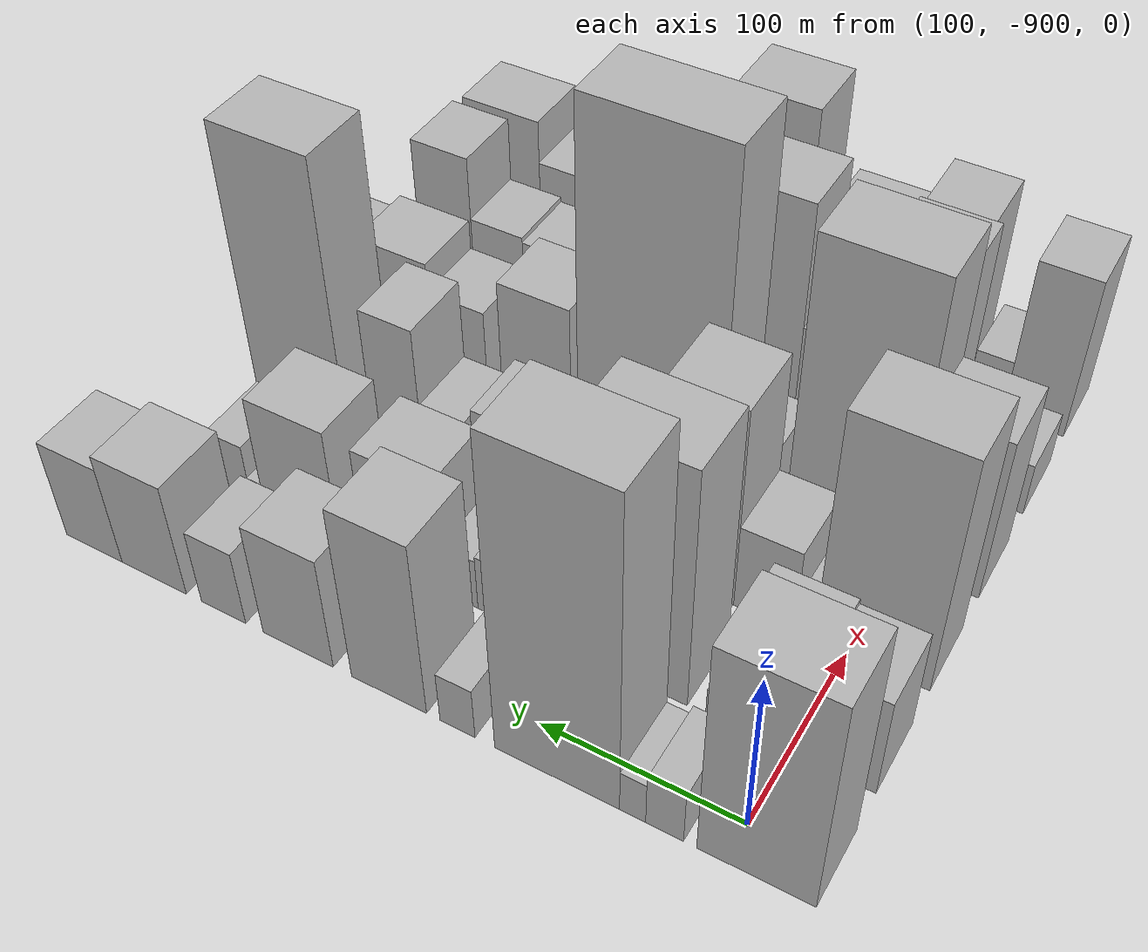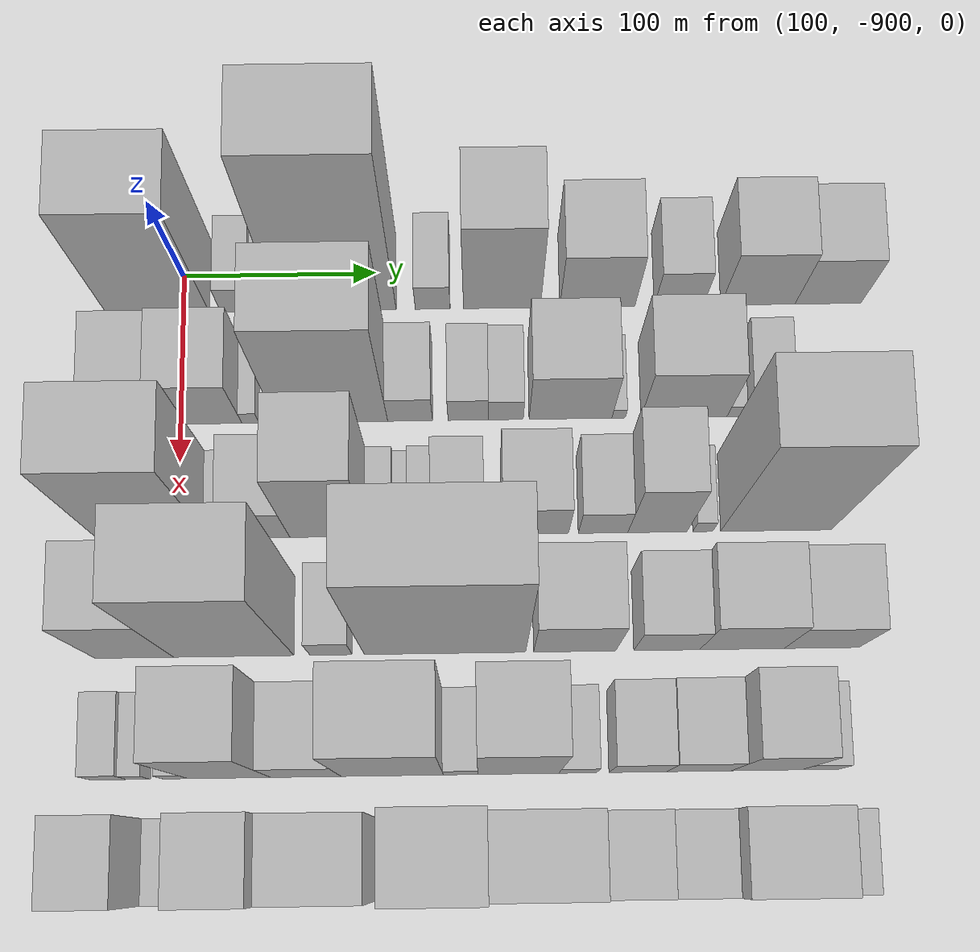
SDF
<sdf version="1.6">
 <world name="default">
  <model name="building_1">
   <static>1</static>
   <pose>100.0000 -913.3014 0 0.000000 0.000000 0.000000</pose>
   <link name="link">
    <pose>0 0 67.50 0 0 0</pose>
    <collision name="collision"><geometry><box><size>40.0000 53.3973 135.0000</size></box></geometry></collision>
    <visual name="visual">
     <cast_shadows>0</cast_shadows>
     <geometry><box><size>40.0000 53.3973 135.0000</size></box></geometry>
     <material>
      <script>
       <uri>model://HANNAS_wall/materials/scripts</uri>
       <uri>model://HANNAS_wall/materials/textures</uri>
       <name>vrc/HANNAS_wall</name>
      </script>
     </material>
    </visual>
   </link>
  </model>
  <model name="building_2">
   <static>1</static>
   <pose>100.0000 -871.7648 0 0.000000 0.000000 0.000000</pose>
   <link name="link">
    <pose>0 0 16.50 0 0 0</pose>
    <collision name="collision"><geometry><box><size>40.0000 17.6759 33.0000</size></box></geometry></collision>
    <visual name="visual">
     <cast_shadows>0</cast_shadows>
     <geometry><box><size>40.0000 17.6759 33.0000</size></box></geometry>
     <material>
      <script>
       <uri>model://HANNAS_wall/materials/scripts</uri>
       <uri>model://HANNAS_wall/materials/textures</uri>
       <name>vrc/HANNAS_wall</name>
      </script>
     </material>
    </visual>
   </link>
  </model>
  <model name="building_3">
   <static>1</static>
   <pose>100.0000 -856.7530 0 0.000000 0.000000 0.000000</pose>
   <link name="link">
    <pose>0 0 13.50 0 0 0</pose>
    <collision name="collision"><geometry><box><size>40.0000 12.3477 27.0000</size></box></geometry></collision>
    <visual name="visual">
     <cast_shadows>0</cast_shadows>
     <geometry><box><size>40.0000 12.3477 27.0000</size></box></geometry>
     <material>
      <script>
       <uri>model://HANNAS_wall/materials/scripts</uri>
       <uri>model://HANNAS_wall/materials/textures</uri>
       <name>vrc/HANNAS_wall</name>
      </script>
     </material>
    </visual>
   </link>
  </model>
  <model name="building_4">
   <static>1</static>
   <pose>100.0000 -819.9749 0 0.000000 0.000000 0.000000</pose>
   <link name="link">
    <pose>0 0 97.50 0 0 0</pose>
    <collision name="collision"><geometry><box><size>40.0000 61.2084 195.0000</size></box></geometry></collision>
    <visual name="visual">
     <cast_shadows>0</cast_shadows>
     <geometry><box><size>40.0000 61.2084 195.0000</size></box></geometry>
     <material>
      <script>
       <uri>model://HANNAS_wall/materials/scripts</uri>
       <uri>model://HANNAS_wall/materials/textures</uri>
       <name>vrc/HANNAS_wall</name>
      </script>
     </material>
    </visual>
   </link>
  </model>
  <model name="building_5">
   <static>1</static>
   <pose>100.0000 -770.3430 0 0.000000 0.000000 0.000000</pose>
   <link name="link">
    <pose>0 0 16.50 0 0 0</pose>
    <collision name="collision"><geometry><box><size>40.0000 18.0554 33.0000</size></box></geometry></collision>
    <visual name="visual">
     <cast_shadows>0</cast_shadows>
     <geometry><box><size>40.0000 18.0554 33.0000</size></box></geometry>
     <material>
      <script>
       <uri>model://HANNAS_wall/materials/scripts</uri>
       <uri>model://HANNAS_wall/materials/textures</uri>
       <name>vrc/HANNAS_wall</name>
      </script>
     </material>
    </visual>
   </link>
  </model>
  <model name="building_6">
   <static>1</static>
   <pose>100.0000 -734.3224 0 0.000000 0.000000 0.000000</pose>
   <link name="link">
    <pose>0 0 55.50 0 0 0</pose>
    <collision name="collision"><geometry><box><size>40.0000 39.9858 111.0000</size></box></geometry></collision>
    <visual name="visual">
     <cast_shadows>0</cast_shadows>
     <geometry><box><size>40.0000 39.9858 111.0000</size></box></geometry>
     <material>
      <script>
       <uri>model://HANNAS_wall/materials/scripts</uri>
       <uri>model://HANNAS_wall/materials/textures</uri>
       <name>vrc/HANNAS_wall</name>
      </script>
     </material>
    </visual>
   </link>
  </model>
  <model name="building_7">
   <static>1</static>
   <pose>100.0000 -684.7469 0 0.000000 0.000000 0.000000</pose>
   <link name="link">
    <pose>0 0 36.00 0 0 0</pose>
    <collision name="collision"><geometry><box><size>40.0000 39.1653 72.0000</size></box></geometry></collision>
    <visual name="visual">
     <cast_shadows>0</cast_shadows>
     <geometry><box><size>40.0000 39.1653 72.0000</size></box></geometry>
     <material>
      <script>
       <uri>model://HANNAS_wall/materials/scripts</uri>
       <uri>model://HANNAS_wall/materials/textures</uri>
       <name>vrc/HANNAS_wall</name>
      </script>
     </material>
    </visual>
   </link>
  </model>
  <model name="building_8">
   <static>1</static>
   <pose>100.0000 -642.3426 0 0.000000 0.000000 0.000000</pose>
   <link name="link">
    <pose>0 0 24.00 0 0 0</pose>
    <collision name="collision"><geometry><box><size>40.0000 25.6432 48.0000</size></box></geometry></collision>
    <visual name="visual">
     <cast_shadows>0</cast_shadows>
     <geometry><box><size>40.0000 25.6432 48.0000</size></box></geometry>
     <material>
      <script>
       <uri>model://HANNAS_wall/materials/scripts</uri>
       <uri>model://HANNAS_wall/materials/textures</uri>
       <name>vrc/HANNAS_wall</name>
      </script>
     </material>
    </visual>
   </link>
  </model>
  <model name="building_9">
   <static>1</static>
   <pose>100.0000 -601.1429 0 0.000000 0.000000 0.000000</pose>
   <link name="link">
    <pose>0 0 36.00 0 0 0</pose>
    <collision name="collision"><geometry><box><size>40.0000 38.7562 72.0000</size></box></geometry></collision>
    <visual name="visual">
     <cast_shadows>0</cast_shadows>
     <geometry><box><size>40.0000 38.7562 72.0000</size></box></geometry>
     <material>
      <script>
       <uri>model://HANNAS_wall/materials/scripts</uri>
       <uri>model://HANNAS_wall/materials/textures</uri>
       <name>vrc/HANNAS_wall</name>
      </script>
     </material>
    </visual>
   </link>
  </model>
  <model name="building_10">
   <static>1</static>
   <pose>100.0000 -564.5531 0 0.000000 0.000000 0.000000</pose>
   <link name="link">
    <pose>0 0 31.50 0 0 0</pose>
    <collision name="collision"><geometry><box><size>40.0000 34.4234 63.0000</size></box></geometry></collision>
    <visual name="visual">
     <cast_shadows>0</cast_shadows>
     <geometry><box><size>40.0000 34.4234 63.0000</size></box></geometry>
     <material>
      <script>
       <uri>model://HANNAS_wall/materials/scripts</uri>
       <uri>model://HANNAS_wall/materials/textures</uri>
       <name>vrc/HANNAS_wall</name>
      </script>
     </material>
    </visual>
   </link>
  </model>
  <model name="building_53">
   <static>1</static>
   <pose>160.0000 -923.9173 0 0.000000 0.000000 0.000000</pose>
   <link name="link">
    <pose>0 0 31.50 0 0 0</pose>
    <collision name="collision"><geometry><box><size>40.0000 32.1654 63.0000</size></box></geometry></collision>
    <visual name="visual">
     <cast_shadows>0</cast_shadows>
     <geometry><box><size>40.0000 32.1654 63.0000</size></box></geometry>
     <material>
      <script>
       <uri>model://HANNAS_wall/materials/scripts</uri>
       <uri>model://HANNAS_wall/materials/textures</uri>
       <name>vrc/HANNAS_wall</name>
      </script>
     </material>
    </visual>
   </link>
  </model>
  <model name="building_54">
   <static>1</static>
   <pose>160.0000 -888.2326 0 0.000000 0.000000 0.000000</pose>
   <link name="link">
    <pose>0 0 33.00 0 0 0</pose>
    <collision name="collision"><geometry><box><size>40.0000 39.2041 66.0000</size></box></geometry></collision>
    <visual name="visual">
     <cast_shadows>0</cast_shadows>
     <geometry><box><size>40.0000 39.2041 66.0000</size></box></geometry>
     <material>
      <script>
       <uri>model://HANNAS_wall/materials/scripts</uri>
       <uri>model://HANNAS_wall/materials/textures</uri>
       <name>vrc/HANNAS_wall</name>
      </script>
     </material>
    </visual>
   </link>
  </model>
  <model name="building_55">
   <static>1</static>
   <pose>160.0000 -864.2498 0 0.000000 0.000000 0.000000</pose>
   <link name="link">
    <pose>0 0 9.00 0 0 0</pose>
    <collision name="collision"><geometry><box><size>40.0000 8.7616 18.0000</size></box></geometry></collision>
    <visual name="visual">
     <cast_shadows>0</cast_shadows>
     <geometry><box><size>40.0000 8.7616 18.0000</size></box></geometry>
     <material>
      <script>
       <uri>model://HANNAS_wall/materials/scripts</uri>
       <uri>model://HANNAS_wall/materials/textures</uri>
       <name>vrc/HANNAS_wall</name>
      </script>
     </material>
    </visual>
   </link>
  </model>
  <model name="building_56">
   <static>1</static>
   <pose>160.0000 -822.3964 0 0.000000 0.000000 0.000000</pose>
   <link name="link">
    <pose>0 0 75.00 0 0 0</pose>
    <collision name="collision"><geometry><box><size>40.0000 56.9450 150.0000</size></box></geometry></collision>
    <visual name="visual">
     <cast_shadows>0</cast_shadows>
     <geometry><box><size>40.0000 56.9450 150.0000</size></box></geometry>
     <material>
      <script>
       <uri>model://HANNAS_wall/materials/scripts</uri>
       <uri>model://HANNAS_wall/materials/textures</uri>
       <name>vrc/HANNAS_wall</name>
      </script>
     </material>
    </visual>
   </link>
  </model>
  <model name="building_57">
   <static>1</static>
   <pose>160.0000 -782.4329 0 0.000000 0.000000 0.000000</pose>
   <link name="link">
    <pose>0 0 19.50 0 0 0</pose>
    <collision name="collision"><geometry><box><size>40.0000 22.9821 39.0000</size></box></geometry></collision>
    <visual name="visual">
     <cast_shadows>0</cast_shadows>
     <geometry><box><size>40.0000 22.9821 39.0000</size></box></geometry>
     <material>
      <script>
       <uri>model://HANNAS_wall/materials/scripts</uri>
       <uri>model://HANNAS_wall/materials/textures</uri>
       <name>vrc/HANNAS_wall</name>
      </script>
     </material>
    </visual>
   </link>
  </model>
  <model name="building_58">
   <static>1</static>
   <pose>160.0000 -752.6674 0 0.000000 0.000000 0.000000</pose>
   <link name="link">
    <pose>0 0 18.00 0 0 0</pose>
    <collision name="collision"><geometry><box><size>40.0000 20.5488 36.0000</size></box></geometry></collision>
    <visual name="visual">
     <cast_shadows>0</cast_shadows>
     <geometry><box><size>40.0000 20.5488 36.0000</size></box></geometry>
     <material>
      <script>
       <uri>model://HANNAS_wall/materials/scripts</uri>
       <uri>model://HANNAS_wall/materials/textures</uri>
       <name>vrc/HANNAS_wall</name>
      </script>
     </material>
    </visual>
   </link>
  </model>
  <model name="building_59">
   <static>1</static>
   <pose>160.0000 -733.4097 0 0.000000 0.000000 0.000000</pose>
   <link name="link">
    <pose>0 0 16.50 0 0 0</pose>
    <collision name="collision"><geometry><box><size>40.0000 17.9665 33.0000</size></box></geometry></collision>
    <visual name="visual">
     <cast_shadows>0</cast_shadows>
     <geometry><box><size>40.0000 17.9665 33.0000</size></box></geometry>
     <material>
      <script>
       <uri>model://HANNAS_wall/materials/scripts</uri>
       <uri>model://HANNAS_wall/materials/textures</uri>
       <name>vrc/HANNAS_wall</name>
      </script>
     </material>
    </visual>
   </link>
  </model>
  <model name="building_60">
   <static>1</static>
   <pose>160.0000 -700.1859 0 0.000000 0.000000 0.000000</pose>
   <link name="link">
    <pose>0 0 36.00 0 0 0</pose>
    <collision name="collision"><geometry><box><size>40.0000 42.4813 72.0000</size></box></geometry></collision>
    <visual name="visual">
     <cast_shadows>0</cast_shadows>
     <geometry><box><size>40.0000 42.4813 72.0000</size></box></geometry>
     <material>
      <script>
       <uri>model://HANNAS_wall/materials/scripts</uri>
       <uri>model://HANNAS_wall/materials/textures</uri>
       <name>vrc/HANNAS_wall</name>
      </script>
     </material>
    </visual>
   </link>
  </model>
  <model name="building_61">
   <static>1</static>
   <pose>160.0000 -675.5092 0 0.000000 0.000000 0.000000</pose>
   <link name="link">
    <pose>0 0 7.50 0 0 0</pose>
    <collision name="collision"><geometry><box><size>40.0000 6.8719 15.0000</size></box></geometry></collision>
    <visual name="visual">
     <cast_shadows>0</cast_shadows>
     <geometry><box><size>40.0000 6.8719 15.0000</size></box></geometry>
     <material>
      <script>
       <uri>model://HANNAS_wall/materials/scripts</uri>
       <uri>model://HANNAS_wall/materials/textures</uri>
       <name>vrc/HANNAS_wall</name>
      </script>
     </material>
    </visual>
   </link>
  </model>
  <model name="building_62">
   <static>1</static>
   <pose>160.0000 -641.9360 0 0.000000 0.000000 0.000000</pose>
   <link name="link">
    <pose>0 0 37.50 0 0 0</pose>
    <collision name="collision"><geometry><box><size>40.0000 44.2746 75.0000</size></box></geometry></collision>
    <visual name="visual">
     <cast_shadows>0</cast_shadows>
     <geometry><box><size>40.0000 44.2746 75.0000</size></box></geometry>
     <material>
      <script>
       <uri>model://HANNAS_wall/materials/scripts</uri>
       <uri>model://HANNAS_wall/materials/textures</uri>
       <name>vrc/HANNAS_wall</name>
      </script>
     </material>
    </visual>
   </link>
  </model>
  <model name="building_63">
   <static>1</static>
   <pose>160.0000 -615.7325 0 0.000000 0.000000 0.000000</pose>
   <link name="link">
    <pose>0 0 9.00 0 0 0</pose>
    <collision name="collision"><geometry><box><size>40.0000 8.1323 18.0000</size></box></geometry></collision>
    <visual name="visual">
     <cast_shadows>0</cast_shadows>
     <geometry><box><size>40.0000 8.1323 18.0000</size></box></geometry>
     <material>
      <script>
       <uri>model://HANNAS_wall/materials/scripts</uri>
       <uri>model://HANNAS_wall/materials/textures</uri>
       <name>vrc/HANNAS_wall</name>
      </script>
     </material>
    </visual>
   </link>
  </model>
  <model name="building_64">
   <static>1</static>
   <pose>160.0000 -601.0917 0 0.000000 0.000000 0.000000</pose>
   <link name="link">
    <pose>0 0 19.50 0 0 0</pose>
    <collision name="collision"><geometry><box><size>40.0000 21.1492 39.0000</size></box></geometry></collision>
    <visual name="visual">
     <cast_shadows>0</cast_shadows>
     <geometry><box><size>40.0000 21.1492 39.0000</size></box></geometry>
     <material>
      <script>
       <uri>model://HANNAS_wall/materials/scripts</uri>
       <uri>model://HANNAS_wall/materials/textures</uri>
       <name>vrc/HANNAS_wall</name>
      </script>
     </material>
    </visual>
   </link>
  </model>
  <model name="building_113">
   <static>1</static>
   <pose>220.0000 -911.9587 0 0.000000 0.000000 0.000000</pose>
   <link name="link">
    <pose>0 0 73.50 0 0 0</pose>
    <collision name="collision"><geometry><box><size>40.0000 56.0827 147.0000</size></box></geometry></collision>
    <visual name="visual">
     <cast_shadows>0</cast_shadows>
     <geometry><box><size>40.0000 56.0827 147.0000</size></box></geometry>
     <material>
      <script>
       <uri>model://HANNAS_wall/materials/scripts</uri>
       <uri>model://HANNAS_wall/materials/textures</uri>
       <name>vrc/HANNAS_wall</name>
      </script>
     </material>
    </visual>
   </link>
  </model>
  <model name="building_114">
   <static>1</static>
   <pose>220.0000 -879.0949 0 0.000000 0.000000 0.000000</pose>
   <link name="link">
    <pose>0 0 12.00 0 0 0</pose>
    <collision name="collision"><geometry><box><size>40.0000 9.6449 24.0000</size></box></geometry></collision>
    <visual name="visual">
     <cast_shadows>0</cast_shadows>
     <geometry><box><size>40.0000 9.6449 24.0000</size></box></geometry>
     <material>
      <script>
       <uri>model://HANNAS_wall/materials/scripts</uri>
       <uri>model://HANNAS_wall/materials/textures</uri>
       <name>vrc/HANNAS_wall</name>
      </script>
     </material>
    </visual>
   </link>
  </model>
  <model name="building_115">
   <static>1</static>
   <pose>220.0000 -858.9068 0 0.000000 0.000000 0.000000</pose>
   <link name="link">
    <pose>0 0 27.00 0 0 0</pose>
    <collision name="collision"><geometry><box><size>40.0000 30.7313 54.0000</size></box></geometry></collision>
    <visual name="visual">
     <cast_shadows>0</cast_shadows>
     <geometry><box><size>40.0000 30.7313 54.0000</size></box></geometry>
     <material>
      <script>
       <uri>model://HANNAS_wall/materials/scripts</uri>
       <uri>model://HANNAS_wall/materials/textures</uri>
       <name>vrc/HANNAS_wall</name>
      </script>
     </material>
    </visual>
   </link>
  </model>
  <model name="building_116">
   <static>1</static>
   <pose>220.0000 -823.7626 0 0.000000 0.000000 0.000000</pose>
   <link name="link">
    <pose>0 0 63.00 0 0 0</pose>
    <collision name="collision"><geometry><box><size>40.0000 39.5571 126.0000</size></box></geometry></collision>
    <visual name="visual">
     <cast_shadows>0</cast_shadows>
     <geometry><box><size>40.0000 39.5571 126.0000</size></box></geometry>
     <material>
      <script>
       <uri>model://HANNAS_wall/materials/scripts</uri>
       <uri>model://HANNAS_wall/materials/textures</uri>
       <name>vrc/HANNAS_wall</name>
      </script>
     </material>
    </visual>
   </link>
  </model>
  <model name="building_117">
   <static>1</static>
   <pose>220.0000 -797.4761 0 0.000000 0.000000 0.000000</pose>
   <link name="link">
    <pose>0 0 13.50 0 0 0</pose>
    <collision name="collision"><geometry><box><size>40.0000 13.0158 27.0000</size></box></geometry></collision>
    <visual name="visual">
     <cast_shadows>0</cast_shadows>
     <geometry><box><size>40.0000 13.0158 27.0000</size></box></geometry>
     <material>
      <script>
       <uri>model://HANNAS_wall/materials/scripts</uri>
       <uri>model://HANNAS_wall/materials/textures</uri>
       <name>vrc/HANNAS_wall</name>
      </script>
     </material>
    </visual>
   </link>
  </model>
  <model name="building_118">
   <static>1</static>
   <pose>220.0000 -787.1967 0 0.000000 0.000000 0.000000</pose>
   <link name="link">
    <pose>0 0 9.00 0 0 0</pose>
    <collision name="collision"><geometry><box><size>40.0000 7.5431 18.0000</size></box></geometry></collision>
    <visual name="visual">
     <cast_shadows>0</cast_shadows>
     <geometry><box><size>40.0000 7.5431 18.0000</size></box></geometry>
     <material>
      <script>
       <uri>model://HANNAS_wall/materials/scripts</uri>
       <uri>model://HANNAS_wall/materials/textures</uri>
       <name>vrc/HANNAS_wall</name>
      </script>
     </material>
    </visual>
   </link>
  </model>
  <model name="building_119">
   <static>1</static>
   <pose>220.0000 -777.4645 0 0.000000 0.000000 0.000000</pose>
   <link name="link">
    <pose>0 0 13.50 0 0 0</pose>
    <collision name="collision"><geometry><box><size>40.0000 11.9212 27.0000</size></box></geometry></collision>
    <visual name="visual">
     <cast_shadows>0</cast_shadows>
     <geometry><box><size>40.0000 11.9212 27.0000</size></box></geometry>
     <material>
      <script>
       <uri>model://HANNAS_wall/materials/scripts</uri>
       <uri>model://HANNAS_wall/materials/textures</uri>
       <name>vrc/HANNAS_wall</name>
      </script>
     </material>
    </visual>
   </link>
  </model>
  <model name="building_120">
   <static>1</static>
   <pose>220.0000 -758.4835 0 0.000000 0.000000 0.000000</pose>
   <link name="link">
    <pose>0 0 22.50 0 0 0</pose>
    <collision name="collision"><geometry><box><size>40.0000 26.0409 45.0000</size></box></geometry></collision>
    <visual name="visual">
     <cast_shadows>0</cast_shadows>
     <geometry><box><size>40.0000 26.0409 45.0000</size></box></geometry>
     <material>
      <script>
       <uri>model://HANNAS_wall/materials/scripts</uri>
       <uri>model://HANNAS_wall/materials/textures</uri>
       <name>vrc/HANNAS_wall</name>
      </script>
     </material>
    </visual>
   </link>
  </model>
  <model name="building_121">
   <static>1</static>
   <pose>220.0000 -719.5982 0 0.000000 0.000000 0.000000</pose>
   <link name="link">
    <pose>0 0 28.50 0 0 0</pose>
    <collision name="collision"><geometry><box><size>40.0000 33.7297 57.0000</size></box></geometry></collision>
    <visual name="visual">
     <cast_shadows>0</cast_shadows>
     <geometry><box><size>40.0000 33.7297 57.0000</size></box></geometry>
     <material>
      <script>
       <uri>model://HANNAS_wall/materials/scripts</uri>
       <uri>model://HANNAS_wall/materials/textures</uri>
       <name>vrc/HANNAS_wall</name>
      </script>
     </material>
    </visual>
   </link>
  </model>
  <model name="building_122">
   <static>1</static>
   <pose>220.0000 -685.2011 0 0.000000 0.000000 0.000000</pose>
   <link name="link">
    <pose>0 0 22.50 0 0 0</pose>
    <collision name="collision"><geometry><box><size>40.0000 25.0645 45.0000</size></box></geometry></collision>
    <visual name="visual">
     <cast_shadows>0</cast_shadows>
     <geometry><box><size>40.0000 25.0645 45.0000</size></box></geometry>
     <material>
      <script>
       <uri>model://HANNAS_wall/materials/scripts</uri>
       <uri>model://HANNAS_wall/materials/textures</uri>
       <name>vrc/HANNAS_wall</name>
      </script>
     </material>
    </visual>
   </link>
  </model>
  <model name="building_123">
   <static>1</static>
   <pose>220.0000 -657.7205 0 0.000000 0.000000 0.000000</pose>
   <link name="link">
    <pose>0 0 46.50 0 0 0</pose>
    <collision name="collision"><geometry><box><size>40.0000 29.8967 93.0000</size></box></geometry></collision>
    <visual name="visual">
     <cast_shadows>0</cast_shadows>
     <geometry><box><size>40.0000 29.8967 93.0000</size></box></geometry>
     <material>
      <script>
       <uri>model://HANNAS_wall/materials/scripts</uri>
       <uri>model://HANNAS_wall/materials/textures</uri>
       <name>vrc/HANNAS_wall</name>
      </script>
     </material>
    </visual>
   </link>
  </model>
  <model name="building_124">
   <static>1</static>
   <pose>220.0000 -634.7199 0 0.000000 0.000000 0.000000</pose>
   <link name="link">
    <pose>0 0 10.50 0 0 0</pose>
    <collision name="collision"><geometry><box><size>40.0000 10.1045 21.0000</size></box></geometry></collision>
    <visual name="visual">
     <cast_shadows>0</cast_shadows>
     <geometry><box><size>40.0000 10.1045 21.0000</size></box></geometry>
     <material>
      <script>
       <uri>model://HANNAS_wall/materials/scripts</uri>
       <uri>model://HANNAS_wall/materials/textures</uri>
       <name>vrc/HANNAS_wall</name>
      </script>
     </material>
    </visual>
   </link>
  </model>
  <model name="building_125">
   <static>1</static>
   <pose>220.0000 -597.5794 0 0.000000 0.000000 0.000000</pose>
   <link name="link">
    <pose>0 0 87.00 0 0 0</pose>
    <collision name="collision"><geometry><box><size>40.0000 56.1765 174.0000</size></box></geometry></collision>
    <visual name="visual">
     <cast_shadows>0</cast_shadows>
     <geometry><box><size>40.0000 56.1765 174.0000</size></box></geometry>
     <material>
      <script>
       <uri>model://HANNAS_wall/materials/scripts</uri>
       <uri>model://HANNAS_wall/materials/textures</uri>
       <name>vrc/HANNAS_wall</name>
      </script>
     </material>
    </visual>
   </link>
  </model>
  <model name="building_169">
   <static>1</static>
   <pose>280.0000 -920.4448 0 0.000000 0.000000 0.000000</pose>
   <link name="link">
    <pose>0 0 51.00 0 0 0</pose>
    <collision name="collision"><geometry><box><size>40.0000 39.1103 102.0000</size></box></geometry></collision>
    <visual name="visual">
     <cast_shadows>0</cast_shadows>
     <geometry><box><size>40.0000 39.1103 102.0000</size></box></geometry>
     <material>
      <script>
       <uri>model://HANNAS_wall/materials/scripts</uri>
       <uri>model://HANNAS_wall/materials/textures</uri>
       <name>vrc/HANNAS_wall</name>
      </script>
     </material>
    </visual>
   </link>
  </model>
  <model name="building_170">
   <static>1</static>
   <pose>280.0000 -870.9176 0 0.000000 0.000000 0.000000</pose>
   <link name="link">
    <pose>0 0 88.50 0 0 0</pose>
    <collision name="collision"><geometry><box><size>40.0000 59.9442 177.0000</size></box></geometry></collision>
    <visual name="visual">
     <cast_shadows>0</cast_shadows>
     <geometry><box><size>40.0000 59.9442 177.0000</size></box></geometry>
     <material>
      <script>
       <uri>model://HANNAS_wall/materials/scripts</uri>
       <uri>model://HANNAS_wall/materials/textures</uri>
       <name>vrc/HANNAS_wall</name>
      </script>
     </material>
    </visual>
   </link>
  </model>
  <model name="building_171">
   <static>1</static>
   <pose>280.0000 -822.4061 0 0.000000 0.000000 0.000000</pose>
   <link name="link">
    <pose>0 0 19.50 0 0 0</pose>
    <collision name="collision"><geometry><box><size>40.0000 21.0786 39.0000</size></box></geometry></collision>
    <visual name="visual">
     <cast_shadows>0</cast_shadows>
     <geometry><box><size>40.0000 21.0786 39.0000</size></box></geometry>
     <material>
      <script>
       <uri>model://HANNAS_wall/materials/scripts</uri>
       <uri>model://HANNAS_wall/materials/textures</uri>
       <name>vrc/HANNAS_wall</name>
      </script>
     </material>
    </visual>
   </link>
  </model>
  <model name="building_172">
   <static>1</static>
   <pose>280.0000 -765.7270 0 0.000000 0.000000 0.000000</pose>
   <link name="link">
    <pose>0 0 103.50 0 0 0</pose>
    <collision name="collision"><geometry><box><size>40.0000 80.2797 207.0000</size></box></geometry></collision>
    <visual name="visual">
     <cast_shadows>0</cast_shadows>
     <geometry><box><size>40.0000 80.2797 207.0000</size></box></geometry>
     <material>
      <script>
       <uri>model://HANNAS_wall/materials/scripts</uri>
       <uri>model://HANNAS_wall/materials/textures</uri>
       <name>vrc/HANNAS_wall</name>
      </script>
     </material>
    </visual>
   </link>
  </model>
  <model name="building_173">
   <static>1</static>
   <pose>280.0000 -701.0826 0 0.000000 0.000000 0.000000</pose>
   <link name="link">
    <pose>0 0 40.50 0 0 0</pose>
    <collision name="collision"><geometry><box><size>40.0000 41.0090 81.0000</size></box></geometry></collision>
    <visual name="visual">
     <cast_shadows>0</cast_shadows>
     <geometry><box><size>40.0000 41.0090 81.0000</size></box></geometry>
     <material>
      <script>
       <uri>model://HANNAS_wall/materials/scripts</uri>
       <uri>model://HANNAS_wall/materials/textures</uri>
       <name>vrc/HANNAS_wall</name>
      </script>
     </material>
    </visual>
   </link>
  </model>
  <model name="building_174">
   <static>1</static>
   <pose>280.0000 -655.0791 0 0.000000 0.000000 0.000000</pose>
   <link name="link">
    <pose>0 0 28.50 0 0 0</pose>
    <collision name="collision"><geometry><box><size>40.0000 32.9980 57.0000</size></box></geometry></collision>
    <visual name="visual">
     <cast_shadows>0</cast_shadows>
     <geometry><box><size>40.0000 32.9980 57.0000</size></box></geometry>
     <material>
      <script>
       <uri>model://HANNAS_wall/materials/scripts</uri>
       <uri>model://HANNAS_wall/materials/textures</uri>
       <name>vrc/HANNAS_wall</name>
      </script>
     </material>
    </visual>
   </link>
  </model>
  <model name="building_175">
   <static>1</static>
   <pose>280.0000 -617.4718 0 0.000000 0.000000 0.000000</pose>
   <link name="link">
    <pose>0 0 37.50 0 0 0</pose>
    <collision name="collision"><geometry><box><size>40.0000 42.2165 75.0000</size></box></geometry></collision>
    <visual name="visual">
     <cast_shadows>0</cast_shadows>
     <geometry><box><size>40.0000 42.2165 75.0000</size></box></geometry>
     <material>
      <script>
       <uri>model://HANNAS_wall/materials/scripts</uri>
       <uri>model://HANNAS_wall/materials/textures</uri>
       <name>vrc/HANNAS_wall</name>
      </script>
     </material>
    </visual>
   </link>
  </model>
  <model name="building_176">
   <static>1</static>
   <pose>280.0000 -577.7357 0 0.000000 0.000000 0.000000</pose>
   <link name="link">
    <pose>0 0 33.00 0 0 0</pose>
    <collision name="collision"><geometry><box><size>40.0000 37.2557 66.0000</size></box></geometry></collision>
    <visual name="visual">
     <cast_shadows>0</cast_shadows>
     <geometry><box><size>40.0000 37.2557 66.0000</size></box></geometry>
     <material>
      <script>
       <uri>model://HANNAS_wall/materials/scripts</uri>
       <uri>model://HANNAS_wall/materials/textures</uri>
       <name>vrc/HANNAS_wall</name>
      </script>
     </material>
    </visual>
   </link>
  </model>
  <model name="building_226">
   <static>1</static>
   <pose>340.0000 -931.0111 0 0.000000 0.000000 0.000000</pose>
   <link name="link">
    <pose>0 0 16.50 0 0 0</pose>
    <collision name="collision"><geometry><box><size>40.0000 17.9778 33.0000</size></box></geometry></collision>
    <visual name="visual">
     <cast_shadows>0</cast_shadows>
     <geometry><box><size>40.0000 17.9778 33.0000</size></box></geometry>
     <material>
      <script>
       <uri>model://HANNAS_wall/materials/scripts</uri>
       <uri>model://HANNAS_wall/materials/textures</uri>
       <name>vrc/HANNAS_wall</name>
      </script>
     </material>
    </visual>
   </link>
  </model>
  <model name="building_227">
   <static>1</static>
   <pose>340.0000 -916.4655 0 0.000000 0.000000 0.000000</pose>
   <link name="link">
    <pose>0 0 13.50 0 0 0</pose>
    <collision name="collision"><geometry><box><size>40.0000 11.1134 27.0000</size></box></geometry></collision>
    <visual name="visual">
     <cast_shadows>0</cast_shadows>
     <geometry><box><size>40.0000 11.1134 27.0000</size></box></geometry>
     <material>
      <script>
       <uri>model://HANNAS_wall/materials/scripts</uri>
       <uri>model://HANNAS_wall/materials/textures</uri>
       <name>vrc/HANNAS_wall</name>
      </script>
     </material>
    </visual>
   </link>
  </model>
  <model name="building_228">
   <static>1</static>
   <pose>340.0000 -898.6084 0 0.000000 0.000000 0.000000</pose>
   <link name="link">
    <pose>0 0 13.50 0 0 0</pose>
    <collision name="collision"><geometry><box><size>40.0000 12.6008 27.0000</size></box></geometry></collision>
    <visual name="visual">
     <cast_shadows>0</cast_shadows>
     <geometry><box><size>40.0000 12.6008 27.0000</size></box></geometry>
     <material>
      <script>
       <uri>model://HANNAS_wall/materials/scripts</uri>
       <uri>model://HANNAS_wall/materials/textures</uri>
       <name>vrc/HANNAS_wall</name>
      </script>
     </material>
    </visual>
   </link>
  </model>
  <model name="building_229">
   <static>1</static>
   <pose>340.0000 -872.0327 0 0.000000 0.000000 0.000000</pose>
   <link name="link">
    <pose>0 0 66.00 0 0 0</pose>
    <collision name="collision"><geometry><box><size>40.0000 40.5506 132.0000</size></box></geometry></collision>
    <visual name="visual">
     <cast_shadows>0</cast_shadows>
     <geometry><box><size>40.0000 40.5506 132.0000</size></box></geometry>
     <material>
      <script>
       <uri>model://HANNAS_wall/materials/scripts</uri>
       <uri>model://HANNAS_wall/materials/textures</uri>
       <name>vrc/HANNAS_wall</name>
      </script>
     </material>
    </visual>
   </link>
  </model>
  <model name="building_230">
   <static>1</static>
   <pose>340.0000 -834.5014 0 0.000000 0.000000 0.000000</pose>
   <link name="link">
    <pose>0 0 33.00 0 0 0</pose>
    <collision name="collision"><geometry><box><size>40.0000 34.5118 66.0000</size></box></geometry></collision>
    <visual name="visual">
     <cast_shadows>0</cast_shadows>
     <geometry><box><size>40.0000 34.5118 66.0000</size></box></geometry>
     <material>
      <script>
       <uri>model://HANNAS_wall/materials/scripts</uri>
       <uri>model://HANNAS_wall/materials/textures</uri>
       <name>vrc/HANNAS_wall</name>
      </script>
     </material>
    </visual>
   </link>
  </model>
  <model name="building_231">
   <static>1</static>
   <pose>340.0000 -792.1340 0 0.000000 0.000000 0.000000</pose>
   <link name="link">
    <pose>0 0 70.50 0 0 0</pose>
    <collision name="collision"><geometry><box><size>40.0000 50.2230 141.0000</size></box></geometry></collision>
    <visual name="visual">
     <cast_shadows>0</cast_shadows>
     <geometry><box><size>40.0000 50.2230 141.0000</size></box></geometry>
     <material>
      <script>
       <uri>model://HANNAS_wall/materials/scripts</uri>
       <uri>model://HANNAS_wall/materials/textures</uri>
       <name>vrc/HANNAS_wall</name>
      </script>
     </material>
    </visual>
   </link>
  </model>
  <model name="building_232">
   <static>1</static>
   <pose>340.0000 -758.5983 0 0.000000 0.000000 0.000000</pose>
   <link name="link">
    <pose>0 0 15.00 0 0 0</pose>
    <collision name="collision"><geometry><box><size>40.0000 16.8485 30.0000</size></box></geometry></collision>
    <visual name="visual">
     <cast_shadows>0</cast_shadows>
     <geometry><box><size>40.0000 16.8485 30.0000</size></box></geometry>
     <material>
      <script>
       <uri>model://HANNAS_wall/materials/scripts</uri>
       <uri>model://HANNAS_wall/materials/textures</uri>
       <name>vrc/HANNAS_wall</name>
      </script>
     </material>
    </visual>
   </link>
  </model>
  <model name="building_233">
   <static>1</static>
   <pose>340.0000 -730.2761 0 0.000000 0.000000 0.000000</pose>
   <link name="link">
    <pose>0 0 66.00 0 0 0</pose>
    <collision name="collision"><geometry><box><size>40.0000 39.7958 132.0000</size></box></geometry></collision>
    <visual name="visual">
     <cast_shadows>0</cast_shadows>
     <geometry><box><size>40.0000 39.7958 132.0000</size></box></geometry>
     <material>
      <script>
       <uri>model://HANNAS_wall/materials/scripts</uri>
       <uri>model://HANNAS_wall/materials/textures</uri>
       <name>vrc/HANNAS_wall</name>
      </script>
     </material>
    </visual>
   </link>
  </model>
  <model name="building_234">
   <static>1</static>
   <pose>340.0000 -701.0867 0 0.000000 0.000000 0.000000</pose>
   <link name="link">
    <pose>0 0 16.50 0 0 0</pose>
    <collision name="collision"><geometry><box><size>40.0000 18.5831 33.0000</size></box></geometry></collision>
    <visual name="visual">
     <cast_shadows>0</cast_shadows>
     <geometry><box><size>40.0000 18.5831 33.0000</size></box></geometry>
     <material>
      <script>
       <uri>model://HANNAS_wall/materials/scripts</uri>
       <uri>model://HANNAS_wall/materials/textures</uri>
       <name>vrc/HANNAS_wall</name>
      </script>
     </material>
    </visual>
   </link>
  </model>
  <model name="building_235">
   <static>1</static>
   <pose>340.0000 -671.5606 0 0.000000 0.000000 0.000000</pose>
   <link name="link">
    <pose>0 0 27.00 0 0 0</pose>
    <collision name="collision"><geometry><box><size>40.0000 28.4691 54.0000</size></box></geometry></collision>
    <visual name="visual">
     <cast_shadows>0</cast_shadows>
     <geometry><box><size>40.0000 28.4691 54.0000</size></box></geometry>
     <material>
      <script>
       <uri>model://HANNAS_wall/materials/scripts</uri>
       <uri>model://HANNAS_wall/materials/textures</uri>
       <name>vrc/HANNAS_wall</name>
      </script>
     </material>
    </visual>
   </link>
  </model>
  <model name="building_236">
   <static>1</static>
   <pose>340.0000 -641.4350 0 0.000000 0.000000 0.000000</pose>
   <link name="link">
    <pose>0 0 28.50 0 0 0</pose>
    <collision name="collision"><geometry><box><size>40.0000 31.7821 57.0000</size></box></geometry></collision>
    <visual name="visual">
     <cast_shadows>0</cast_shadows>
     <geometry><box><size>40.0000 31.7821 57.0000</size></box></geometry>
     <material>
      <script>
       <uri>model://HANNAS_wall/materials/scripts</uri>
       <uri>model://HANNAS_wall/materials/textures</uri>
       <name>vrc/HANNAS_wall</name>
      </script>
     </material>
    </visual>
   </link>
  </model>
  <model name="building_237">
   <static>1</static>
   <pose>340.0000 -608.2324 0 0.000000 0.000000 0.000000</pose>
   <link name="link">
    <pose>0 0 48.00 0 0 0</pose>
    <collision name="collision"><geometry><box><size>40.0000 34.6230 96.0000</size></box></geometry></collision>
    <visual name="visual">
     <cast_shadows>0</cast_shadows>
     <geometry><box><size>40.0000 34.6230 96.0000</size></box></geometry>
     <material>
      <script>
       <uri>model://HANNAS_wall/materials/scripts</uri>
       <uri>model://HANNAS_wall/materials/textures</uri>
       <name>vrc/HANNAS_wall</name>
      </script>
     </material>
    </visual>
   </link>
  </model>
  <model name="building_238">
   <static>1</static>
   <pose>340.0000 -581.6152 0 0.000000 0.000000 0.000000</pose>
   <link name="link">
    <pose>0 0 16.50 0 0 0</pose>
    <collision name="collision"><geometry><box><size>40.0000 18.6115 33.0000</size></box></geometry></collision>
    <visual name="visual">
     <cast_shadows>0</cast_shadows>
     <geometry><box><size>40.0000 18.6115 33.0000</size></box></geometry>
     <material>
      <script>
       <uri>model://HANNAS_wall/materials/scripts</uri>
       <uri>model://HANNAS_wall/materials/textures</uri>
       <name>vrc/HANNAS_wall</name>
      </script>
     </material>
    </visual>
   </link>
  </model>
  <model name="building_281">
   <static>1</static>
   <pose>400.0000 -923.8747 0 0.000000 0.000000 0.000000</pose>
   <link name="link">
    <pose>0 0 51.00 0 0 0</pose>
    <collision name="collision"><geometry><box><size>40.0000 32.2505 102.0000</size></box></geometry></collision>
    <visual name="visual">
     <cast_shadows>0</cast_shadows>
     <geometry><box><size>40.0000 32.2505 102.0000</size></box></geometry>
     <material>
      <script>
       <uri>model://HANNAS_wall/materials/scripts</uri>
       <uri>model://HANNAS_wall/materials/textures</uri>
       <name>vrc/HANNAS_wall</name>
      </script>
     </material>
    </visual>
   </link>
  </model>
  <model name="building_282">
   <static>1</static>
   <pose>400.0000 -897.8923 0 0.000000 0.000000 0.000000</pose>
   <link name="link">
    <pose>0 0 18.00 0 0 0</pose>
    <collision name="collision"><geometry><box><size>40.0000 19.7144 36.0000</size></box></geometry></collision>
    <visual name="visual">
     <cast_shadows>0</cast_shadows>
     <geometry><box><size>40.0000 19.7144 36.0000</size></box></geometry>
     <material>
      <script>
       <uri>model://HANNAS_wall/materials/scripts</uri>
       <uri>model://HANNAS_wall/materials/textures</uri>
       <name>vrc/HANNAS_wall</name>
      </script>
     </material>
    </visual>
   </link>
  </model>
  <model name="building_283">
   <static>1</static>
   <pose>400.0000 -866.2223 0 0.000000 0.000000 0.000000</pose>
   <link name="link">
    <pose>0 0 57.00 0 0 0</pose>
    <collision name="collision"><geometry><box><size>40.0000 35.6256 114.0000</size></box></geometry></collision>
    <visual name="visual">
     <cast_shadows>0</cast_shadows>
     <geometry><box><size>40.0000 35.6256 114.0000</size></box></geometry>
     <material>
      <script>
       <uri>model://HANNAS_wall/materials/scripts</uri>
       <uri>model://HANNAS_wall/materials/textures</uri>
       <name>vrc/HANNAS_wall</name>
      </script>
     </material>
    </visual>
   </link>
  </model>
  <model name="building_284">
   <static>1</static>
   <pose>400.0000 -824.4976 0 0.000000 0.000000 0.000000</pose>
   <link name="link">
    <pose>0 0 45.00 0 0 0</pose>
    <collision name="collision"><geometry><box><size>40.0000 47.8238 90.0000</size></box></geometry></collision>
    <visual name="visual">
     <cast_shadows>0</cast_shadows>
     <geometry><box><size>40.0000 47.8238 90.0000</size></box></geometry>
     <material>
      <script>
       <uri>model://HANNAS_wall/materials/scripts</uri>
       <uri>model://HANNAS_wall/materials/textures</uri>
       <name>vrc/HANNAS_wall</name>
      </script>
     </material>
    </visual>
   </link>
  </model>
  <model name="building_285">
   <static>1</static>
   <pose>400.0000 -768.8564 0 0.000000 0.000000 0.000000</pose>
   <link name="link">
    <pose>0 0 73.50 0 0 0</pose>
    <collision name="collision"><geometry><box><size>40.0000 45.4586 147.0000</size></box></geometry></collision>
    <visual name="visual">
     <cast_shadows>0</cast_shadows>
     <geometry><box><size>40.0000 45.4586 147.0000</size></box></geometry>
     <material>
      <script>
       <uri>model://HANNAS_wall/materials/scripts</uri>
       <uri>model://HANNAS_wall/materials/textures</uri>
       <name>vrc/HANNAS_wall</name>
      </script>
     </material>
    </visual>
   </link>
  </model>
  <model name="building_286">
   <static>1</static>
   <pose>400.0000 -719.7925 0 0.000000 0.000000 0.000000</pose>
   <link name="link">
    <pose>0 0 45.00 0 0 0</pose>
    <collision name="collision"><geometry><box><size>40.0000 52.6693 90.0000</size></box></geometry></collision>
    <visual name="visual">
     <cast_shadows>0</cast_shadows>
     <geometry><box><size>40.0000 52.6693 90.0000</size></box></geometry>
     <material>
      <script>
       <uri>model://HANNAS_wall/materials/scripts</uri>
       <uri>model://HANNAS_wall/materials/textures</uri>
       <name>vrc/HANNAS_wall</name>
      </script>
     </material>
    </visual>
   </link>
  </model>
  <model name="building_287">
   <static>1</static>
   <pose>400.0000 -677.1003 0 0.000000 0.000000 0.000000</pose>
   <link name="link">
    <pose>0 0 30.00 0 0 0</pose>
    <collision name="collision"><geometry><box><size>40.0000 32.7151 60.0000</size></box></geometry></collision>
    <visual name="visual">
     <cast_shadows>0</cast_shadows>
     <geometry><box><size>40.0000 32.7151 60.0000</size></box></geometry>
     <material>
      <script>
       <uri>model://HANNAS_wall/materials/scripts</uri>
       <uri>model://HANNAS_wall/materials/textures</uri>
       <name>vrc/HANNAS_wall</name>
      </script>
     </material>
    </visual>
   </link>
  </model>
  <model name="building_288">
   <static>1</static>
   <pose>400.0000 -646.0608 0 0.000000 0.000000 0.000000</pose>
   <link name="link">
    <pose>0 0 28.50 0 0 0</pose>
    <collision name="collision"><geometry><box><size>40.0000 29.3638 57.0000</size></box></geometry></collision>
    <visual name="visual">
     <cast_shadows>0</cast_shadows>
     <geometry><box><size>40.0000 29.3638 57.0000</size></box></geometry>
     <material>
      <script>
       <uri>model://HANNAS_wall/materials/scripts</uri>
       <uri>model://HANNAS_wall/materials/textures</uri>
       <name>vrc/HANNAS_wall</name>
      </script>
     </material>
    </visual>
   </link>
  </model>
  <model name="building_289">
   <static>1</static>
   <pose>400.0000 -607.2482 0 0.000000 0.000000 0.000000</pose>
   <link name="link">
    <pose>0 0 42.00 0 0 0</pose>
    <collision name="collision"><geometry><box><size>40.0000 48.2615 84.0000</size></box></geometry></collision>
    <visual name="visual">
     <cast_shadows>0</cast_shadows>
     <geometry><box><size>40.0000 48.2615 84.0000</size></box></geometry>
     <material>
      <script>
       <uri>model://HANNAS_wall/materials/scripts</uri>
       <uri>model://HANNAS_wall/materials/textures</uri>
       <name>vrc/HANNAS_wall</name>
      </script>
     </material>
    </visual>
   </link>
  </model>
  <model name="building_290">
   <static>1</static>
   <pose>400.0000 -567.3912 0 0.000000 0.000000 0.000000</pose>
   <link name="link">
    <pose>0 0 13.50 0 0 0</pose>
    <collision name="collision"><geometry><box><size>40.0000 13.4525 27.0000</size></box></geometry></collision>
    <visual name="visual">
     <cast_shadows>0</cast_shadows>
     <geometry><box><size>40.0000 13.4525 27.0000</size></box></geometry>
     <material>
      <script>
       <uri>model://HANNAS_wall/materials/scripts</uri>
       <uri>model://HANNAS_wall/materials/textures</uri>
       <name>vrc/HANNAS_wall</name>
      </script>
     </material>
    </visual>
   </link>
  </model>
 </world>
</sdf>
